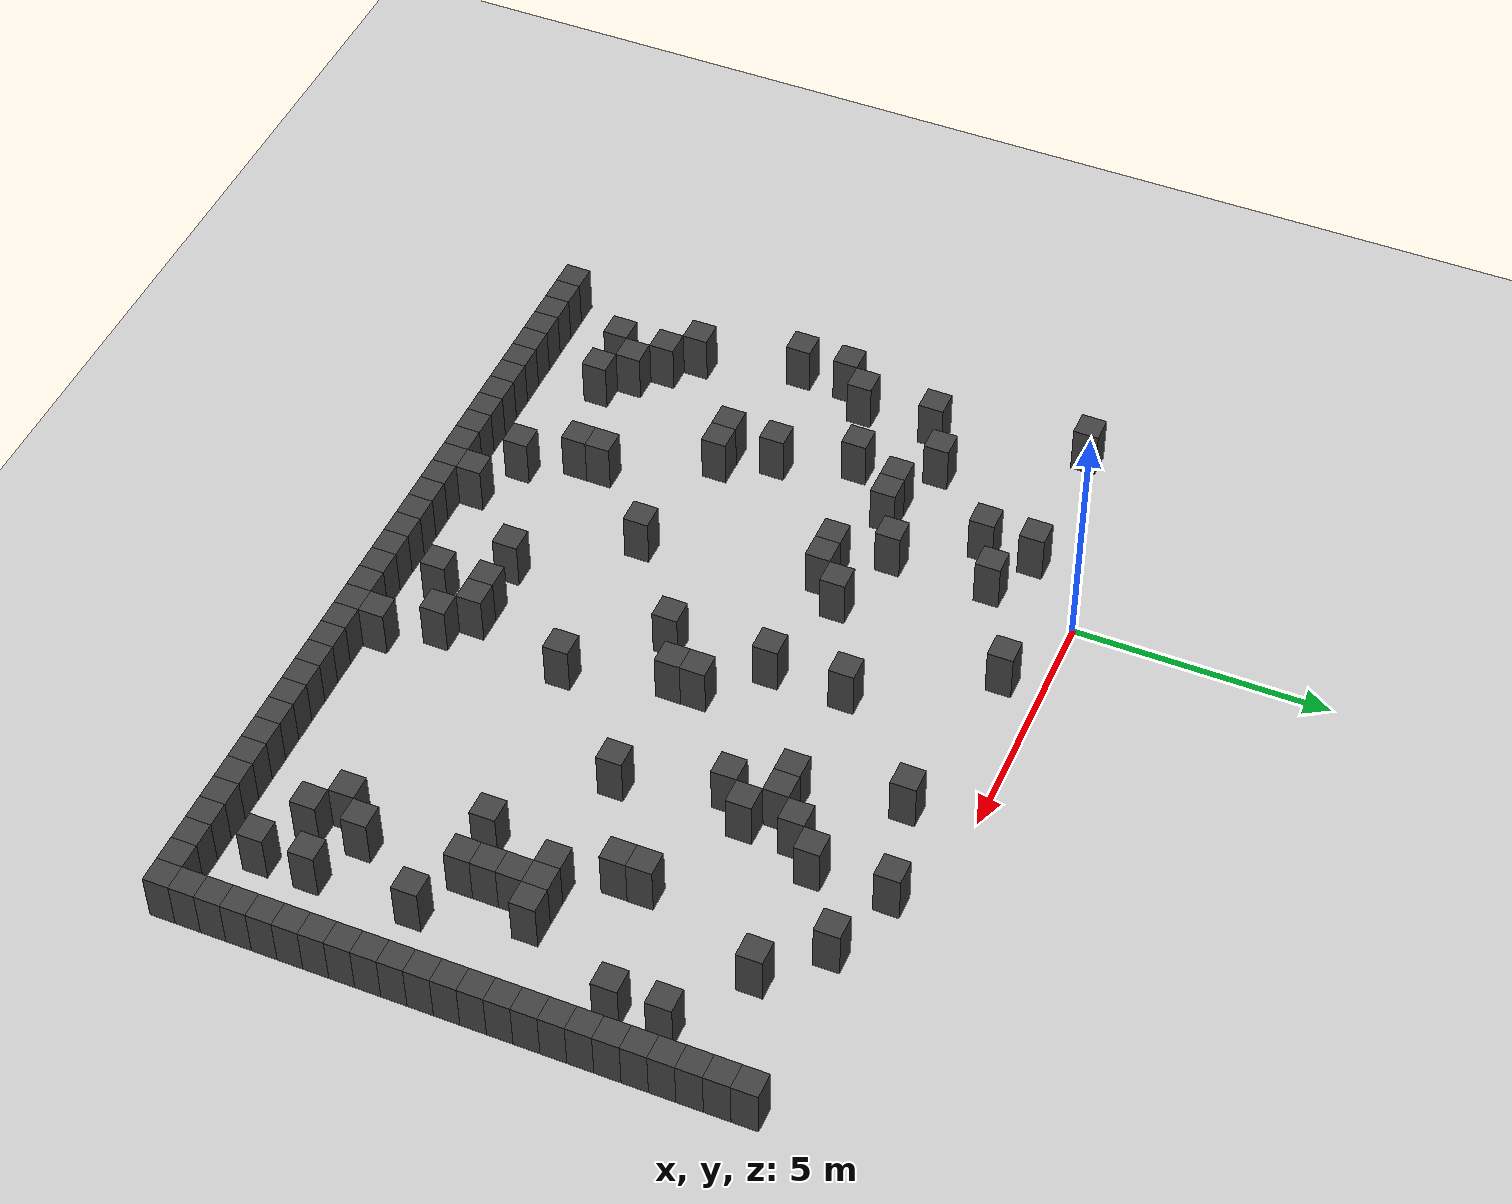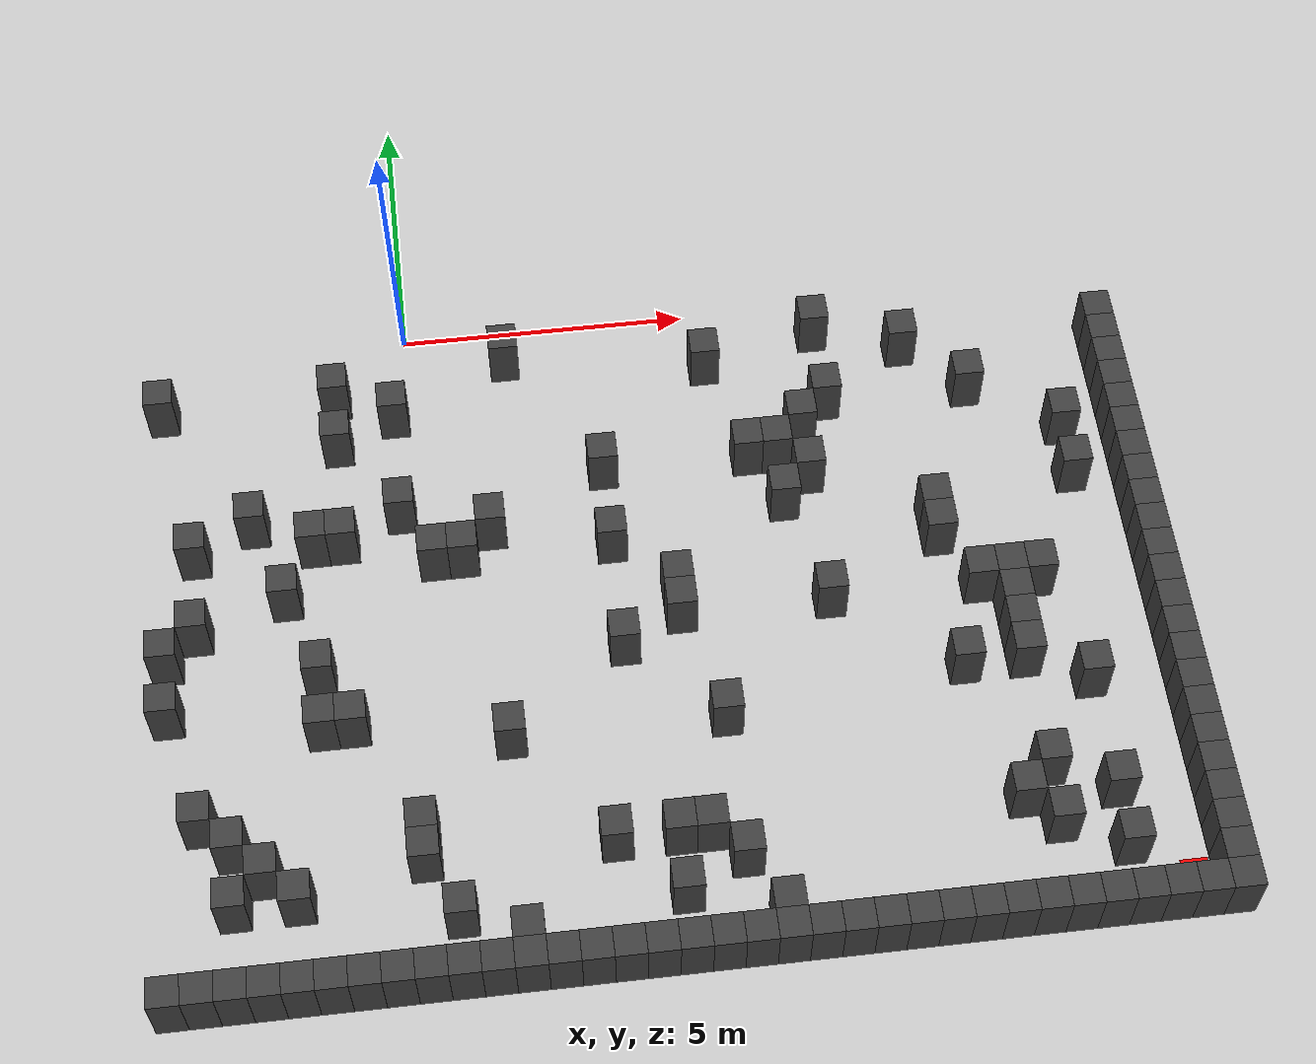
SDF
<sdf version="1.7">
 <world name="map_1352">
  <model name="ground_plane">
   <static>true</static>
   <link name="link">
    <collision name="collision">
     <geometry><plane><normal>0 0 1</normal><size>200 200</size></plane></geometry>
    </collision>
    <visual name="visual">
     <geometry><plane><normal>0 0 1</normal><size>200 200</size></plane></geometry>
     <material><ambient>0.8 0.8 0.8 1</ambient><diffuse>0.8 0.8 0.8 1</diffuse></material>
    </visual>
   </link>
  </model>
  <model name="maze_environment">
   <static>true</static>
   <link name="wall_196">
    <pose>1.750 -0.750 0.500 0 0 0</pose>
    <collision name="col"><geometry><box><size>0.5 0.5 1.0</size></box></geometry></collision>
    <visual name="vis">
     <geometry><box><size>0.5 0.5 1.0</size></box></geometry>
     <material><ambient>0.15 0.15 0.15 1</ambient><diffuse>0.25 0.25 0.25 1</diffuse></material>
    </visual>
   </link>
   <link name="wall_197">
    <pose>7.250 -0.750 0.500 0 0 0</pose>
    <collision name="col"><geometry><box><size>0.5 0.5 1.0</size></box></geometry></collision>
    <visual name="vis">
     <geometry><box><size>0.5 0.5 1.0</size></box></geometry>
     <material><ambient>0.15 0.15 0.15 1</ambient><diffuse>0.25 0.25 0.25 1</diffuse></material>
    </visual>
   </link>
   <link name="wall_202">
    <pose>-4.250 -1.250 0.500 0 0 0</pose>
    <collision name="col"><geometry><box><size>0.5 0.5 1.0</size></box></geometry></collision>
    <visual name="vis">
     <geometry><box><size>0.5 0.5 1.0</size></box></geometry>
     <material><ambient>0.15 0.15 0.15 1</ambient><diffuse>0.25 0.25 0.25 1</diffuse></material>
    </visual>
   </link>
   <link name="wall_203">
    <pose>-1.250 -1.250 0.500 0 0 0</pose>
    <collision name="col"><geometry><box><size>0.5 0.5 1.0</size></box></geometry></collision>
    <visual name="vis">
     <geometry><box><size>0.5 0.5 1.0</size></box></geometry>
     <material><ambient>0.15 0.15 0.15 1</ambient><diffuse>0.25 0.25 0.25 1</diffuse></material>
    </visual>
   </link>
   <link name="wall_204">
    <pose>5.250 -1.250 0.500 0 0 0</pose>
    <collision name="col"><geometry><box><size>0.5 0.5 1.0</size></box></geometry></collision>
    <visual name="vis">
     <geometry><box><size>0.5 0.5 1.0</size></box></geometry>
     <material><ambient>0.15 0.15 0.15 1</ambient><diffuse>0.25 0.25 0.25 1</diffuse></material>
    </visual>
   </link>
   <link name="wall_205">
    <pose>8.750 -1.250 0.500 0 0 0</pose>
    <collision name="col"><geometry><box><size>0.5 0.5 1.0</size></box></geometry></collision>
    <visual name="vis">
     <geometry><box><size>0.5 0.5 1.0</size></box></geometry>
     <material><ambient>0.15 0.15 0.15 1</ambient><diffuse>0.25 0.25 0.25 1</diffuse></material>
    </visual>
   </link>
   <link name="wall_206">
    <pose>12.250 -1.250 0.500 0 0 0</pose>
    <collision name="col"><geometry><box><size>0.5 0.5 1.0</size></box></geometry></collision>
    <visual name="vis">
     <geometry><box><size>0.5 0.5 1.0</size></box></geometry>
     <material><ambient>0.15 0.15 0.15 1</ambient><diffuse>0.25 0.25 0.25 1</diffuse></material>
    </visual>
   </link>
   <link name="wall_208">
    <pose>-0.250 -1.750 0.500 0 0 0</pose>
    <collision name="col"><geometry><box><size>0.5 0.5 1.0</size></box></geometry></collision>
    <visual name="vis">
     <geometry><box><size>0.5 0.5 1.0</size></box></geometry>
     <material><ambient>0.15 0.15 0.15 1</ambient><diffuse>0.25 0.25 0.25 1</diffuse></material>
    </visual>
   </link>
   <link name="wall_209">
    <pose>12.250 -1.750 0.500 0 0 0</pose>
    <collision name="col"><geometry><box><size>0.5 0.5 1.0</size></box></geometry></collision>
    <visual name="vis">
     <geometry><box><size>0.5 0.5 1.0</size></box></geometry>
     <material><ambient>0.15 0.15 0.15 1</ambient><diffuse>0.25 0.25 0.25 1</diffuse></material>
    </visual>
   </link>
   <link name="wall_212">
    <pose>-1.250 -2.250 0.500 0 0 0</pose>
    <collision name="col"><geometry><box><size>0.5 0.5 1.0</size></box></geometry></collision>
    <visual name="vis">
     <geometry><box><size>0.5 0.5 1.0</size></box></geometry>
     <material><ambient>0.15 0.15 0.15 1</ambient><diffuse>0.25 0.25 0.25 1</diffuse></material>
    </visual>
   </link>
   <link name="wall_213">
    <pose>7.250 -2.250 0.500 0 0 0</pose>
    <collision name="col"><geometry><box><size>0.5 0.5 1.0</size></box></geometry></collision>
    <visual name="vis">
     <geometry><box><size>0.5 0.5 1.0</size></box></geometry>
     <material><ambient>0.15 0.15 0.15 1</ambient><diffuse>0.25 0.25 0.25 1</diffuse></material>
    </visual>
   </link>
   <link name="wall_214">
    <pose>9.750 -2.250 0.500 0 0 0</pose>
    <collision name="col"><geometry><box><size>0.5 0.5 1.0</size></box></geometry></collision>
    <visual name="vis">
     <geometry><box><size>0.5 0.5 1.0</size></box></geometry>
     <material><ambient>0.15 0.15 0.15 1</ambient><diffuse>0.25 0.25 0.25 1</diffuse></material>
    </visual>
   </link>
   <link name="wall_215">
    <pose>12.250 -2.250 0.500 0 0 0</pose>
    <collision name="col"><geometry><box><size>0.5 0.5 1.0</size></box></geometry></collision>
    <visual name="vis">
     <geometry><box><size>0.5 0.5 1.0</size></box></geometry>
     <material><ambient>0.15 0.15 0.15 1</ambient><diffuse>0.25 0.25 0.25 1</diffuse></material>
    </visual>
   </link>
   <link name="wall_217">
    <pose>6.750 -2.750 0.500 0 0 0</pose>
    <collision name="col"><geometry><box><size>0.5 0.5 1.0</size></box></geometry></collision>
    <visual name="vis">
     <geometry><box><size>0.5 0.5 1.0</size></box></geometry>
     <material><ambient>0.15 0.15 0.15 1</ambient><diffuse>0.25 0.25 0.25 1</diffuse></material>
    </visual>
   </link>
   <link name="wall_218">
    <pose>12.250 -2.750 0.500 0 0 0</pose>
    <collision name="col"><geometry><box><size>0.5 0.5 1.0</size></box></geometry></collision>
    <visual name="vis">
     <geometry><box><size>0.5 0.5 1.0</size></box></geometry>
     <material><ambient>0.15 0.15 0.15 1</ambient><diffuse>0.25 0.25 0.25 1</diffuse></material>
    </visual>
   </link>
   <link name="wall_220">
    <pose>3.250 -3.250 0.500 0 0 0</pose>
    <collision name="col"><geometry><box><size>0.5 0.5 1.0</size></box></geometry></collision>
    <visual name="vis">
     <geometry><box><size>0.5 0.5 1.0</size></box></geometry>
     <material><ambient>0.15 0.15 0.15 1</ambient><diffuse>0.25 0.25 0.25 1</diffuse></material>
    </visual>
   </link>
   <link name="wall_221">
    <pose>5.750 -3.250 0.500 0 0 0</pose>
    <collision name="col"><geometry><box><size>0.5 0.5 1.0</size></box></geometry></collision>
    <visual name="vis">
     <geometry><box><size>0.5 0.5 1.0</size></box></geometry>
     <material><ambient>0.15 0.15 0.15 1</ambient><diffuse>0.25 0.25 0.25 1</diffuse></material>
    </visual>
   </link>
   <link name="wall_222">
    <pose>6.250 -3.250 0.500 0 0 0</pose>
    <collision name="col"><geometry><box><size>0.5 0.5 1.0</size></box></geometry></collision>
    <visual name="vis">
     <geometry><box><size>0.5 0.5 1.0</size></box></geometry>
     <material><ambient>0.15 0.15 0.15 1</ambient><diffuse>0.25 0.25 0.25 1</diffuse></material>
    </visual>
   </link>
   <link name="wall_223">
    <pose>11.250 -3.250 0.500 0 0 0</pose>
    <collision name="col"><geometry><box><size>0.5 0.5 1.0</size></box></geometry></collision>
    <visual name="vis">
     <geometry><box><size>0.5 0.5 1.0</size></box></geometry>
     <material><ambient>0.15 0.15 0.15 1</ambient><diffuse>0.25 0.25 0.25 1</diffuse></material>
    </visual>
   </link>
   <link name="wall_224">
    <pose>12.250 -3.250 0.500 0 0 0</pose>
    <collision name="col"><geometry><box><size>0.5 0.5 1.0</size></box></geometry></collision>
    <visual name="vis">
     <geometry><box><size>0.5 0.5 1.0</size></box></geometry>
     <material><ambient>0.15 0.15 0.15 1</ambient><diffuse>0.25 0.25 0.25 1</diffuse></material>
    </visual>
   </link>
   <link name="wall_229">
    <pose>-2.750 -3.750 0.500 0 0 0</pose>
    <collision name="col"><geometry><box><size>0.5 0.5 1.0</size></box></geometry></collision>
    <visual name="vis">
     <geometry><box><size>0.5 0.5 1.0</size></box></geometry>
     <material><ambient>0.15 0.15 0.15 1</ambient><diffuse>0.25 0.25 0.25 1</diffuse></material>
    </visual>
   </link>
   <link name="wall_230">
    <pose>-0.250 -3.750 0.500 0 0 0</pose>
    <collision name="col"><geometry><box><size>0.5 0.5 1.0</size></box></geometry></collision>
    <visual name="vis">
     <geometry><box><size>0.5 0.5 1.0</size></box></geometry>
     <material><ambient>0.15 0.15 0.15 1</ambient><diffuse>0.25 0.25 0.25 1</diffuse></material>
    </visual>
   </link>
   <link name="wall_231">
    <pose>6.750 -3.750 0.500 0 0 0</pose>
    <collision name="col"><geometry><box><size>0.5 0.5 1.0</size></box></geometry></collision>
    <visual name="vis">
     <geometry><box><size>0.5 0.5 1.0</size></box></geometry>
     <material><ambient>0.15 0.15 0.15 1</ambient><diffuse>0.25 0.25 0.25 1</diffuse></material>
    </visual>
   </link>
   <link name="wall_232">
    <pose>12.250 -3.750 0.500 0 0 0</pose>
    <collision name="col"><geometry><box><size>0.5 0.5 1.0</size></box></geometry></collision>
    <visual name="vis">
     <geometry><box><size>0.5 0.5 1.0</size></box></geometry>
     <material><ambient>0.15 0.15 0.15 1</ambient><diffuse>0.25 0.25 0.25 1</diffuse></material>
    </visual>
   </link>
   <link name="wall_235">
    <pose>-3.750 -4.250 0.500 0 0 0</pose>
    <collision name="col"><geometry><box><size>0.5 0.5 1.0</size></box></geometry></collision>
    <visual name="vis">
     <geometry><box><size>0.5 0.5 1.0</size></box></geometry>
     <material><ambient>0.15 0.15 0.15 1</ambient><diffuse>0.25 0.25 0.25 1</diffuse></material>
    </visual>
   </link>
   <link name="wall_236">
    <pose>-1.750 -4.250 0.500 0 0 0</pose>
    <collision name="col"><geometry><box><size>0.5 0.5 1.0</size></box></geometry></collision>
    <visual name="vis">
     <geometry><box><size>0.5 0.5 1.0</size></box></geometry>
     <material><ambient>0.15 0.15 0.15 1</ambient><diffuse>0.25 0.25 0.25 1</diffuse></material>
    </visual>
   </link>
   <link name="wall_237">
    <pose>-1.250 -4.250 0.500 0 0 0</pose>
    <collision name="col"><geometry><box><size>0.5 0.5 1.0</size></box></geometry></collision>
    <visual name="vis">
     <geometry><box><size>0.5 0.5 1.0</size></box></geometry>
     <material><ambient>0.15 0.15 0.15 1</ambient><diffuse>0.25 0.25 0.25 1</diffuse></material>
    </visual>
   </link>
   <link name="wall_238">
    <pose>1.250 -4.250 0.500 0 0 0</pose>
    <collision name="col"><geometry><box><size>0.5 0.5 1.0</size></box></geometry></collision>
    <visual name="vis">
     <geometry><box><size>0.5 0.5 1.0</size></box></geometry>
     <material><ambient>0.15 0.15 0.15 1</ambient><diffuse>0.25 0.25 0.25 1</diffuse></material>
    </visual>
   </link>
   <link name="wall_239">
    <pose>6.250 -4.250 0.500 0 0 0</pose>
    <collision name="col"><geometry><box><size>0.5 0.5 1.0</size></box></geometry></collision>
    <visual name="vis">
     <geometry><box><size>0.5 0.5 1.0</size></box></geometry>
     <material><ambient>0.15 0.15 0.15 1</ambient><diffuse>0.25 0.25 0.25 1</diffuse></material>
    </visual>
   </link>
   <link name="wall_240">
    <pose>11.250 -4.250 0.500 0 0 0</pose>
    <collision name="col"><geometry><box><size>0.5 0.5 1.0</size></box></geometry></collision>
    <visual name="vis">
     <geometry><box><size>0.5 0.5 1.0</size></box></geometry>
     <material><ambient>0.15 0.15 0.15 1</ambient><diffuse>0.25 0.25 0.25 1</diffuse></material>
    </visual>
   </link>
   <link name="wall_241">
    <pose>12.250 -4.250 0.500 0 0 0</pose>
    <collision name="col"><geometry><box><size>0.5 0.5 1.0</size></box></geometry></collision>
    <visual name="vis">
     <geometry><box><size>0.5 0.5 1.0</size></box></geometry>
     <material><ambient>0.15 0.15 0.15 1</ambient><diffuse>0.25 0.25 0.25 1</diffuse></material>
    </visual>
   </link>
   <link name="wall_244">
    <pose>0.250 -4.750 0.500 0 0 0</pose>
    <collision name="col"><geometry><box><size>0.5 0.5 1.0</size></box></geometry></collision>
    <visual name="vis">
     <geometry><box><size>0.5 0.5 1.0</size></box></geometry>
     <material><ambient>0.15 0.15 0.15 1</ambient><diffuse>0.25 0.25 0.25 1</diffuse></material>
    </visual>
   </link>
   <link name="wall_245">
    <pose>0.750 -4.750 0.500 0 0 0</pose>
    <collision name="col"><geometry><box><size>0.5 0.5 1.0</size></box></geometry></collision>
    <visual name="vis">
     <geometry><box><size>0.5 0.5 1.0</size></box></geometry>
     <material><ambient>0.15 0.15 0.15 1</ambient><diffuse>0.25 0.25 0.25 1</diffuse></material>
    </visual>
   </link>
   <link name="wall_246">
    <pose>3.250 -4.750 0.500 0 0 0</pose>
    <collision name="col"><geometry><box><size>0.5 0.5 1.0</size></box></geometry></collision>
    <visual name="vis">
     <geometry><box><size>0.5 0.5 1.0</size></box></geometry>
     <material><ambient>0.15 0.15 0.15 1</ambient><diffuse>0.25 0.25 0.25 1</diffuse></material>
    </visual>
   </link>
   <link name="wall_247">
    <pose>8.750 -4.750 0.500 0 0 0</pose>
    <collision name="col"><geometry><box><size>0.5 0.5 1.0</size></box></geometry></collision>
    <visual name="vis">
     <geometry><box><size>0.5 0.5 1.0</size></box></geometry>
     <material><ambient>0.15 0.15 0.15 1</ambient><diffuse>0.25 0.25 0.25 1</diffuse></material>
    </visual>
   </link>
   <link name="wall_248">
    <pose>12.250 -4.750 0.500 0 0 0</pose>
    <collision name="col"><geometry><box><size>0.5 0.5 1.0</size></box></geometry></collision>
    <visual name="vis">
     <geometry><box><size>0.5 0.5 1.0</size></box></geometry>
     <material><ambient>0.15 0.15 0.15 1</ambient><diffuse>0.25 0.25 0.25 1</diffuse></material>
    </visual>
   </link>
   <link name="wall_251">
    <pose>-2.250 -5.250 0.500 0 0 0</pose>
    <collision name="col"><geometry><box><size>0.5 0.5 1.0</size></box></geometry></collision>
    <visual name="vis">
     <geometry><box><size>0.5 0.5 1.0</size></box></geometry>
     <material><ambient>0.15 0.15 0.15 1</ambient><diffuse>0.25 0.25 0.25 1</diffuse></material>
    </visual>
   </link>
   <link name="wall_252">
    <pose>8.750 -5.250 0.500 0 0 0</pose>
    <collision name="col"><geometry><box><size>0.5 0.5 1.0</size></box></geometry></collision>
    <visual name="vis">
     <geometry><box><size>0.5 0.5 1.0</size></box></geometry>
     <material><ambient>0.15 0.15 0.15 1</ambient><diffuse>0.25 0.25 0.25 1</diffuse></material>
    </visual>
   </link>
   <link name="wall_253">
    <pose>12.250 -5.250 0.500 0 0 0</pose>
    <collision name="col"><geometry><box><size>0.5 0.5 1.0</size></box></geometry></collision>
    <visual name="vis">
     <geometry><box><size>0.5 0.5 1.0</size></box></geometry>
     <material><ambient>0.15 0.15 0.15 1</ambient><diffuse>0.25 0.25 0.25 1</diffuse></material>
    </visual>
   </link>
   <link name="wall_257">
    <pose>-3.750 -5.750 0.500 0 0 0</pose>
    <collision name="col"><geometry><box><size>0.5 0.5 1.0</size></box></geometry></collision>
    <visual name="vis">
     <geometry><box><size>0.5 0.5 1.0</size></box></geometry>
     <material><ambient>0.15 0.15 0.15 1</ambient><diffuse>0.25 0.25 0.25 1</diffuse></material>
    </visual>
   </link>
   <link name="wall_258">
    <pose>4.250 -5.750 0.500 0 0 0</pose>
    <collision name="col"><geometry><box><size>0.5 0.5 1.0</size></box></geometry></collision>
    <visual name="vis">
     <geometry><box><size>0.5 0.5 1.0</size></box></geometry>
     <material><ambient>0.15 0.15 0.15 1</ambient><diffuse>0.25 0.25 0.25 1</diffuse></material>
    </visual>
   </link>
   <link name="wall_259">
    <pose>12.250 -5.750 0.500 0 0 0</pose>
    <collision name="col"><geometry><box><size>0.5 0.5 1.0</size></box></geometry></collision>
    <visual name="vis">
     <geometry><box><size>0.5 0.5 1.0</size></box></geometry>
     <material><ambient>0.15 0.15 0.15 1</ambient><diffuse>0.25 0.25 0.25 1</diffuse></material>
    </visual>
   </link>
   <link name="wall_262">
    <pose>-4.250 -6.250 0.500 0 0 0</pose>
    <collision name="col"><geometry><box><size>0.5 0.5 1.0</size></box></geometry></collision>
    <visual name="vis">
     <geometry><box><size>0.5 0.5 1.0</size></box></geometry>
     <material><ambient>0.15 0.15 0.15 1</ambient><diffuse>0.25 0.25 0.25 1</diffuse></material>
    </visual>
   </link>
   <link name="wall_263">
    <pose>4.250 -6.250 0.500 0 0 0</pose>
    <collision name="col"><geometry><box><size>0.5 0.5 1.0</size></box></geometry></collision>
    <visual name="vis">
     <geometry><box><size>0.5 0.5 1.0</size></box></geometry>
     <material><ambient>0.15 0.15 0.15 1</ambient><diffuse>0.25 0.25 0.25 1</diffuse></material>
    </visual>
   </link>
   <link name="wall_264">
    <pose>6.750 -6.250 0.500 0 0 0</pose>
    <collision name="col"><geometry><box><size>0.5 0.5 1.0</size></box></geometry></collision>
    <visual name="vis">
     <geometry><box><size>0.5 0.5 1.0</size></box></geometry>
     <material><ambient>0.15 0.15 0.15 1</ambient><diffuse>0.25 0.25 0.25 1</diffuse></material>
    </visual>
   </link>
   <link name="wall_265">
    <pose>9.250 -6.250 0.500 0 0 0</pose>
    <collision name="col"><geometry><box><size>0.5 0.5 1.0</size></box></geometry></collision>
    <visual name="vis">
     <geometry><box><size>0.5 0.5 1.0</size></box></geometry>
     <material><ambient>0.15 0.15 0.15 1</ambient><diffuse>0.25 0.25 0.25 1</diffuse></material>
    </visual>
   </link>
   <link name="wall_266">
    <pose>9.750 -6.250 0.500 0 0 0</pose>
    <collision name="col"><geometry><box><size>0.5 0.5 1.0</size></box></geometry></collision>
    <visual name="vis">
     <geometry><box><size>0.5 0.5 1.0</size></box></geometry>
     <material><ambient>0.15 0.15 0.15 1</ambient><diffuse>0.25 0.25 0.25 1</diffuse></material>
    </visual>
   </link>
   <link name="wall_267">
    <pose>10.250 -6.250 0.500 0 0 0</pose>
    <collision name="col"><geometry><box><size>0.5 0.5 1.0</size></box></geometry></collision>
    <visual name="vis">
     <geometry><box><size>0.5 0.5 1.0</size></box></geometry>
     <material><ambient>0.15 0.15 0.15 1</ambient><diffuse>0.25 0.25 0.25 1</diffuse></material>
    </visual>
   </link>
   <link name="wall_268">
    <pose>12.250 -6.250 0.500 0 0 0</pose>
    <collision name="col"><geometry><box><size>0.5 0.5 1.0</size></box></geometry></collision>
    <visual name="vis">
     <geometry><box><size>0.5 0.5 1.0</size></box></geometry>
     <material><ambient>0.15 0.15 0.15 1</ambient><diffuse>0.25 0.25 0.25 1</diffuse></material>
    </visual>
   </link>
   <link name="wall_271">
    <pose>-1.750 -6.750 0.500 0 0 0</pose>
    <collision name="col"><geometry><box><size>0.5 0.5 1.0</size></box></geometry></collision>
    <visual name="vis">
     <geometry><box><size>0.5 0.5 1.0</size></box></geometry>
     <material><ambient>0.15 0.15 0.15 1</ambient><diffuse>0.25 0.25 0.25 1</diffuse></material>
    </visual>
   </link>
   <link name="wall_272">
    <pose>3.250 -6.750 0.500 0 0 0</pose>
    <collision name="col"><geometry><box><size>0.5 0.5 1.0</size></box></geometry></collision>
    <visual name="vis">
     <geometry><box><size>0.5 0.5 1.0</size></box></geometry>
     <material><ambient>0.15 0.15 0.15 1</ambient><diffuse>0.25 0.25 0.25 1</diffuse></material>
    </visual>
   </link>
   <link name="wall_273">
    <pose>9.750 -6.750 0.500 0 0 0</pose>
    <collision name="col"><geometry><box><size>0.5 0.5 1.0</size></box></geometry></collision>
    <visual name="vis">
     <geometry><box><size>0.5 0.5 1.0</size></box></geometry>
     <material><ambient>0.15 0.15 0.15 1</ambient><diffuse>0.25 0.25 0.25 1</diffuse></material>
    </visual>
   </link>
   <link name="wall_274">
    <pose>12.250 -6.750 0.500 0 0 0</pose>
    <collision name="col"><geometry><box><size>0.5 0.5 1.0</size></box></geometry></collision>
    <visual name="vis">
     <geometry><box><size>0.5 0.5 1.0</size></box></geometry>
     <material><ambient>0.15 0.15 0.15 1</ambient><diffuse>0.25 0.25 0.25 1</diffuse></material>
    </visual>
   </link>
   <link name="wall_278">
    <pose>-4.250 -7.250 0.500 0 0 0</pose>
    <collision name="col"><geometry><box><size>0.5 0.5 1.0</size></box></geometry></collision>
    <visual name="vis">
     <geometry><box><size>0.5 0.5 1.0</size></box></geometry>
     <material><ambient>0.15 0.15 0.15 1</ambient><diffuse>0.25 0.25 0.25 1</diffuse></material>
    </visual>
   </link>
   <link name="wall_279">
    <pose>9.750 -7.250 0.500 0 0 0</pose>
    <collision name="col"><geometry><box><size>0.5 0.5 1.0</size></box></geometry></collision>
    <visual name="vis">
     <geometry><box><size>0.5 0.5 1.0</size></box></geometry>
     <material><ambient>0.15 0.15 0.15 1</ambient><diffuse>0.25 0.25 0.25 1</diffuse></material>
    </visual>
   </link>
   <link name="wall_280">
    <pose>12.250 -7.250 0.500 0 0 0</pose>
    <collision name="col"><geometry><box><size>0.5 0.5 1.0</size></box></geometry></collision>
    <visual name="vis">
     <geometry><box><size>0.5 0.5 1.0</size></box></geometry>
     <material><ambient>0.15 0.15 0.15 1</ambient><diffuse>0.25 0.25 0.25 1</diffuse></material>
    </visual>
   </link>
   <link name="wall_284">
    <pose>-1.750 -7.750 0.500 0 0 0</pose>
    <collision name="col"><geometry><box><size>0.5 0.5 1.0</size></box></geometry></collision>
    <visual name="vis">
     <geometry><box><size>0.5 0.5 1.0</size></box></geometry>
     <material><ambient>0.15 0.15 0.15 1</ambient><diffuse>0.25 0.25 0.25 1</diffuse></material>
    </visual>
   </link>
   <link name="wall_285">
    <pose>-1.250 -7.750 0.500 0 0 0</pose>
    <collision name="col"><geometry><box><size>0.5 0.5 1.0</size></box></geometry></collision>
    <visual name="vis">
     <geometry><box><size>0.5 0.5 1.0</size></box></geometry>
     <material><ambient>0.15 0.15 0.15 1</ambient><diffuse>0.25 0.25 0.25 1</diffuse></material>
    </visual>
   </link>
   <link name="wall_286">
    <pose>8.750 -7.750 0.500 0 0 0</pose>
    <collision name="col"><geometry><box><size>0.5 0.5 1.0</size></box></geometry></collision>
    <visual name="vis">
     <geometry><box><size>0.5 0.5 1.0</size></box></geometry>
     <material><ambient>0.15 0.15 0.15 1</ambient><diffuse>0.25 0.25 0.25 1</diffuse></material>
    </visual>
   </link>
   <link name="wall_287">
    <pose>9.750 -7.750 0.500 0 0 0</pose>
    <collision name="col"><geometry><box><size>0.5 0.5 1.0</size></box></geometry></collision>
    <visual name="vis">
     <geometry><box><size>0.5 0.5 1.0</size></box></geometry>
     <material><ambient>0.15 0.15 0.15 1</ambient><diffuse>0.25 0.25 0.25 1</diffuse></material>
    </visual>
   </link>
   <link name="wall_288">
    <pose>12.250 -7.750 0.500 0 0 0</pose>
    <collision name="col"><geometry><box><size>0.5 0.5 1.0</size></box></geometry></collision>
    <visual name="vis">
     <geometry><box><size>0.5 0.5 1.0</size></box></geometry>
     <material><ambient>0.15 0.15 0.15 1</ambient><diffuse>0.25 0.25 0.25 1</diffuse></material>
    </visual>
   </link>
   <link name="wall_290">
    <pose>1.250 -8.250 0.500 0 0 0</pose>
    <collision name="col"><geometry><box><size>0.5 0.5 1.0</size></box></geometry></collision>
    <visual name="vis">
     <geometry><box><size>0.5 0.5 1.0</size></box></geometry>
     <material><ambient>0.15 0.15 0.15 1</ambient><diffuse>0.25 0.25 0.25 1</diffuse></material>
    </visual>
   </link>
   <link name="wall_291">
    <pose>4.750 -8.250 0.500 0 0 0</pose>
    <collision name="col"><geometry><box><size>0.5 0.5 1.0</size></box></geometry></collision>
    <visual name="vis">
     <geometry><box><size>0.5 0.5 1.0</size></box></geometry>
     <material><ambient>0.15 0.15 0.15 1</ambient><diffuse>0.25 0.25 0.25 1</diffuse></material>
    </visual>
   </link>
   <link name="wall_292">
    <pose>10.750 -8.250 0.500 0 0 0</pose>
    <collision name="col"><geometry><box><size>0.5 0.5 1.0</size></box></geometry></collision>
    <visual name="vis">
     <geometry><box><size>0.5 0.5 1.0</size></box></geometry>
     <material><ambient>0.15 0.15 0.15 1</ambient><diffuse>0.25 0.25 0.25 1</diffuse></material>
    </visual>
   </link>
   <link name="wall_293">
    <pose>12.250 -8.250 0.500 0 0 0</pose>
    <collision name="col"><geometry><box><size>0.5 0.5 1.0</size></box></geometry></collision>
    <visual name="vis">
     <geometry><box><size>0.5 0.5 1.0</size></box></geometry>
     <material><ambient>0.15 0.15 0.15 1</ambient><diffuse>0.25 0.25 0.25 1</diffuse></material>
    </visual>
   </link>
   <link name="wall_297">
    <pose>12.250 -8.750 0.500 0 0 0</pose>
    <collision name="col"><geometry><box><size>0.5 0.5 1.0</size></box></geometry></collision>
    <visual name="vis">
     <geometry><box><size>0.5 0.5 1.0</size></box></geometry>
     <material><ambient>0.15 0.15 0.15 1</ambient><diffuse>0.25 0.25 0.25 1</diffuse></material>
    </visual>
   </link>
   <link name="wall_299">
    <pose>-3.750 -9.250 0.500 0 0 0</pose>
    <collision name="col"><geometry><box><size>0.5 0.5 1.0</size></box></geometry></collision>
    <visual name="vis">
     <geometry><box><size>0.5 0.5 1.0</size></box></geometry>
     <material><ambient>0.15 0.15 0.15 1</ambient><diffuse>0.25 0.25 0.25 1</diffuse></material>
    </visual>
   </link>
   <link name="wall_300">
    <pose>12.250 -9.250 0.500 0 0 0</pose>
    <collision name="col"><geometry><box><size>0.5 0.5 1.0</size></box></geometry></collision>
    <visual name="vis">
     <geometry><box><size>0.5 0.5 1.0</size></box></geometry>
     <material><ambient>0.15 0.15 0.15 1</ambient><diffuse>0.25 0.25 0.25 1</diffuse></material>
    </visual>
   </link>
   <link name="wall_302">
    <pose>-3.250 -9.750 0.500 0 0 0</pose>
    <collision name="col"><geometry><box><size>0.5 0.5 1.0</size></box></geometry></collision>
    <visual name="vis">
     <geometry><box><size>0.5 0.5 1.0</size></box></geometry>
     <material><ambient>0.15 0.15 0.15 1</ambient><diffuse>0.25 0.25 0.25 1</diffuse></material>
    </visual>
   </link>
   <link name="wall_303">
    <pose>-0.250 -9.750 0.500 0 0 0</pose>
    <collision name="col"><geometry><box><size>0.5 0.5 1.0</size></box></geometry></collision>
    <visual name="vis">
     <geometry><box><size>0.5 0.5 1.0</size></box></geometry>
     <material><ambient>0.15 0.15 0.15 1</ambient><diffuse>0.25 0.25 0.25 1</diffuse></material>
    </visual>
   </link>
   <link name="wall_304">
    <pose>9.750 -9.750 0.500 0 0 0</pose>
    <collision name="col"><geometry><box><size>0.5 0.5 1.0</size></box></geometry></collision>
    <visual name="vis">
     <geometry><box><size>0.5 0.5 1.0</size></box></geometry>
     <material><ambient>0.15 0.15 0.15 1</ambient><diffuse>0.25 0.25 0.25 1</diffuse></material>
    </visual>
   </link>
   <link name="wall_305">
    <pose>12.250 -9.750 0.500 0 0 0</pose>
    <collision name="col"><geometry><box><size>0.5 0.5 1.0</size></box></geometry></collision>
    <visual name="vis">
     <geometry><box><size>0.5 0.5 1.0</size></box></geometry>
     <material><ambient>0.15 0.15 0.15 1</ambient><diffuse>0.25 0.25 0.25 1</diffuse></material>
    </visual>
   </link>
   <link name="wall_308">
    <pose>-2.750 -10.250 0.500 0 0 0</pose>
    <collision name="col"><geometry><box><size>0.5 0.5 1.0</size></box></geometry></collision>
    <visual name="vis">
     <geometry><box><size>0.5 0.5 1.0</size></box></geometry>
     <material><ambient>0.15 0.15 0.15 1</ambient><diffuse>0.25 0.25 0.25 1</diffuse></material>
    </visual>
   </link>
   <link name="wall_309">
    <pose>-0.250 -10.250 0.500 0 0 0</pose>
    <collision name="col"><geometry><box><size>0.5 0.5 1.0</size></box></geometry></collision>
    <visual name="vis">
     <geometry><box><size>0.5 0.5 1.0</size></box></geometry>
     <material><ambient>0.15 0.15 0.15 1</ambient><diffuse>0.25 0.25 0.25 1</diffuse></material>
    </visual>
   </link>
   <link name="wall_310">
    <pose>2.750 -10.250 0.500 0 0 0</pose>
    <collision name="col"><geometry><box><size>0.5 0.5 1.0</size></box></geometry></collision>
    <visual name="vis">
     <geometry><box><size>0.5 0.5 1.0</size></box></geometry>
     <material><ambient>0.15 0.15 0.15 1</ambient><diffuse>0.25 0.25 0.25 1</diffuse></material>
    </visual>
   </link>
   <link name="wall_311">
    <pose>3.750 -10.250 0.500 0 0 0</pose>
    <collision name="col"><geometry><box><size>0.5 0.5 1.0</size></box></geometry></collision>
    <visual name="vis">
     <geometry><box><size>0.5 0.5 1.0</size></box></geometry>
     <material><ambient>0.15 0.15 0.15 1</ambient><diffuse>0.25 0.25 0.25 1</diffuse></material>
    </visual>
   </link>
   <link name="wall_312">
    <pose>4.250 -10.250 0.500 0 0 0</pose>
    <collision name="col"><geometry><box><size>0.5 0.5 1.0</size></box></geometry></collision>
    <visual name="vis">
     <geometry><box><size>0.5 0.5 1.0</size></box></geometry>
     <material><ambient>0.15 0.15 0.15 1</ambient><diffuse>0.25 0.25 0.25 1</diffuse></material>
    </visual>
   </link>
   <link name="wall_313">
    <pose>9.250 -10.250 0.500 0 0 0</pose>
    <collision name="col"><geometry><box><size>0.5 0.5 1.0</size></box></geometry></collision>
    <visual name="vis">
     <geometry><box><size>0.5 0.5 1.0</size></box></geometry>
     <material><ambient>0.15 0.15 0.15 1</ambient><diffuse>0.25 0.25 0.25 1</diffuse></material>
    </visual>
   </link>
   <link name="wall_314">
    <pose>10.750 -10.250 0.500 0 0 0</pose>
    <collision name="col"><geometry><box><size>0.5 0.5 1.0</size></box></geometry></collision>
    <visual name="vis">
     <geometry><box><size>0.5 0.5 1.0</size></box></geometry>
     <material><ambient>0.15 0.15 0.15 1</ambient><diffuse>0.25 0.25 0.25 1</diffuse></material>
    </visual>
   </link>
   <link name="wall_315">
    <pose>12.250 -10.250 0.500 0 0 0</pose>
    <collision name="col"><geometry><box><size>0.5 0.5 1.0</size></box></geometry></collision>
    <visual name="vis">
     <geometry><box><size>0.5 0.5 1.0</size></box></geometry>
     <material><ambient>0.15 0.15 0.15 1</ambient><diffuse>0.25 0.25 0.25 1</diffuse></material>
    </visual>
   </link>
   <link name="wall_317">
    <pose>-3.250 -10.750 0.500 0 0 0</pose>
    <collision name="col"><geometry><box><size>0.5 0.5 1.0</size></box></geometry></collision>
    <visual name="vis">
     <geometry><box><size>0.5 0.5 1.0</size></box></geometry>
     <material><ambient>0.15 0.15 0.15 1</ambient><diffuse>0.25 0.25 0.25 1</diffuse></material>
    </visual>
   </link>
   <link name="wall_318">
    <pose>-2.250 -10.750 0.500 0 0 0</pose>
    <collision name="col"><geometry><box><size>0.5 0.5 1.0</size></box></geometry></collision>
    <visual name="vis">
     <geometry><box><size>0.5 0.5 1.0</size></box></geometry>
     <material><ambient>0.15 0.15 0.15 1</ambient><diffuse>0.25 0.25 0.25 1</diffuse></material>
    </visual>
   </link>
   <link name="wall_319">
    <pose>4.750 -10.750 0.500 0 0 0</pose>
    <collision name="col"><geometry><box><size>0.5 0.5 1.0</size></box></geometry></collision>
    <visual name="vis">
     <geometry><box><size>0.5 0.5 1.0</size></box></geometry>
     <material><ambient>0.15 0.15 0.15 1</ambient><diffuse>0.25 0.25 0.25 1</diffuse></material>
    </visual>
   </link>
   <link name="wall_320">
    <pose>9.750 -10.750 0.500 0 0 0</pose>
    <collision name="col"><geometry><box><size>0.5 0.5 1.0</size></box></geometry></collision>
    <visual name="vis">
     <geometry><box><size>0.5 0.5 1.0</size></box></geometry>
     <material><ambient>0.15 0.15 0.15 1</ambient><diffuse>0.25 0.25 0.25 1</diffuse></material>
    </visual>
   </link>
   <link name="wall_321">
    <pose>12.250 -10.750 0.500 0 0 0</pose>
    <collision name="col"><geometry><box><size>0.5 0.5 1.0</size></box></geometry></collision>
    <visual name="vis">
     <geometry><box><size>0.5 0.5 1.0</size></box></geometry>
     <material><ambient>0.15 0.15 0.15 1</ambient><diffuse>0.25 0.25 0.25 1</diffuse></material>
    </visual>
   </link>
   <link name="wall_323">
    <pose>0.250 -11.250 0.500 0 0 0</pose>
    <collision name="col"><geometry><box><size>0.5 0.5 1.0</size></box></geometry></collision>
    <visual name="vis">
     <geometry><box><size>0.5 0.5 1.0</size></box></geometry>
     <material><ambient>0.15 0.15 0.15 1</ambient><diffuse>0.25 0.25 0.25 1</diffuse></material>
    </visual>
   </link>
   <link name="wall_324">
    <pose>3.750 -11.250 0.500 0 0 0</pose>
    <collision name="col"><geometry><box><size>0.5 0.5 1.0</size></box></geometry></collision>
    <visual name="vis">
     <geometry><box><size>0.5 0.5 1.0</size></box></geometry>
     <material><ambient>0.15 0.15 0.15 1</ambient><diffuse>0.25 0.25 0.25 1</diffuse></material>
    </visual>
   </link>
   <link name="wall_325">
    <pose>10.750 -11.250 0.500 0 0 0</pose>
    <collision name="col"><geometry><box><size>0.5 0.5 1.0</size></box></geometry></collision>
    <visual name="vis">
     <geometry><box><size>0.5 0.5 1.0</size></box></geometry>
     <material><ambient>0.15 0.15 0.15 1</ambient><diffuse>0.25 0.25 0.25 1</diffuse></material>
    </visual>
   </link>
   <link name="wall_326">
    <pose>12.250 -11.250 0.500 0 0 0</pose>
    <collision name="col"><geometry><box><size>0.5 0.5 1.0</size></box></geometry></collision>
    <visual name="vis">
     <geometry><box><size>0.5 0.5 1.0</size></box></geometry>
     <material><ambient>0.15 0.15 0.15 1</ambient><diffuse>0.25 0.25 0.25 1</diffuse></material>
    </visual>
   </link>
   <link name="wall_328">
    <pose>1.250 -11.750 0.500 0 0 0</pose>
    <collision name="col"><geometry><box><size>0.5 0.5 1.0</size></box></geometry></collision>
    <visual name="vis">
     <geometry><box><size>0.5 0.5 1.0</size></box></geometry>
     <material><ambient>0.15 0.15 0.15 1</ambient><diffuse>0.25 0.25 0.25 1</diffuse></material>
    </visual>
   </link>
   <link name="wall_329">
    <pose>5.250 -11.750 0.500 0 0 0</pose>
    <collision name="col"><geometry><box><size>0.5 0.5 1.0</size></box></geometry></collision>
    <visual name="vis">
     <geometry><box><size>0.5 0.5 1.0</size></box></geometry>
     <material><ambient>0.15 0.15 0.15 1</ambient><diffuse>0.25 0.25 0.25 1</diffuse></material>
    </visual>
   </link>
   <link name="wall_330">
    <pose>12.250 -11.750 0.500 0 0 0</pose>
    <collision name="col"><geometry><box><size>0.5 0.5 1.0</size></box></geometry></collision>
    <visual name="vis">
     <geometry><box><size>0.5 0.5 1.0</size></box></geometry>
     <material><ambient>0.15 0.15 0.15 1</ambient><diffuse>0.25 0.25 0.25 1</diffuse></material>
    </visual>
   </link>
   <link name="wall_347">
    <pose>-4.250 -12.250 0.500 0 0 0</pose>
    <collision name="col"><geometry><box><size>0.5 0.5 1.0</size></box></geometry></collision>
    <visual name="vis">
     <geometry><box><size>0.5 0.5 1.0</size></box></geometry>
     <material><ambient>0.15 0.15 0.15 1</ambient><diffuse>0.25 0.25 0.25 1</diffuse></material>
    </visual>
   </link>
   <link name="wall_348">
    <pose>-3.750 -12.250 0.500 0 0 0</pose>
    <collision name="col"><geometry><box><size>0.5 0.5 1.0</size></box></geometry></collision>
    <visual name="vis">
     <geometry><box><size>0.5 0.5 1.0</size></box></geometry>
     <material><ambient>0.15 0.15 0.15 1</ambient><diffuse>0.25 0.25 0.25 1</diffuse></material>
    </visual>
   </link>
   <link name="wall_349">
    <pose>-3.250 -12.250 0.500 0 0 0</pose>
    <collision name="col"><geometry><box><size>0.5 0.5 1.0</size></box></geometry></collision>
    <visual name="vis">
     <geometry><box><size>0.5 0.5 1.0</size></box></geometry>
     <material><ambient>0.15 0.15 0.15 1</ambient><diffuse>0.25 0.25 0.25 1</diffuse></material>
    </visual>
   </link>
   <link name="wall_350">
    <pose>-2.750 -12.250 0.500 0 0 0</pose>
    <collision name="col"><geometry><box><size>0.5 0.5 1.0</size></box></geometry></collision>
    <visual name="vis">
     <geometry><box><size>0.5 0.5 1.0</size></box></geometry>
     <material><ambient>0.15 0.15 0.15 1</ambient><diffuse>0.25 0.25 0.25 1</diffuse></material>
    </visual>
   </link>
   <link name="wall_351">
    <pose>-2.250 -12.250 0.500 0 0 0</pose>
    <collision name="col"><geometry><box><size>0.5 0.5 1.0</size></box></geometry></collision>
    <visual name="vis">
     <geometry><box><size>0.5 0.5 1.0</size></box></geometry>
     <material><ambient>0.15 0.15 0.15 1</ambient><diffuse>0.25 0.25 0.25 1</diffuse></material>
    </visual>
   </link>
   <link name="wall_352">
    <pose>-1.750 -12.250 0.500 0 0 0</pose>
    <collision name="col"><geometry><box><size>0.5 0.5 1.0</size></box></geometry></collision>
    <visual name="vis">
     <geometry><box><size>0.5 0.5 1.0</size></box></geometry>
     <material><ambient>0.15 0.15 0.15 1</ambient><diffuse>0.25 0.25 0.25 1</diffuse></material>
    </visual>
   </link>
   <link name="wall_353">
    <pose>-1.250 -12.250 0.500 0 0 0</pose>
    <collision name="col"><geometry><box><size>0.5 0.5 1.0</size></box></geometry></collision>
    <visual name="vis">
     <geometry><box><size>0.5 0.5 1.0</size></box></geometry>
     <material><ambient>0.15 0.15 0.15 1</ambient><diffuse>0.25 0.25 0.25 1</diffuse></material>
    </visual>
   </link>
   <link name="wall_354">
    <pose>-0.750 -12.250 0.500 0 0 0</pose>
    <collision name="col"><geometry><box><size>0.5 0.5 1.0</size></box></geometry></collision>
    <visual name="vis">
     <geometry><box><size>0.5 0.5 1.0</size></box></geometry>
     <material><ambient>0.15 0.15 0.15 1</ambient><diffuse>0.25 0.25 0.25 1</diffuse></material>
    </visual>
   </link>
   <link name="wall_355">
    <pose>-0.250 -12.250 0.500 0 0 0</pose>
    <collision name="col"><geometry><box><size>0.5 0.5 1.0</size></box></geometry></collision>
    <visual name="vis">
     <geometry><box><size>0.5 0.5 1.0</size></box></geometry>
     <material><ambient>0.15 0.15 0.15 1</ambient><diffuse>0.25 0.25 0.25 1</diffuse></material>
    </visual>
   </link>
   <link name="wall_356">
    <pose>0.250 -12.250 0.500 0 0 0</pose>
    <collision name="col"><geometry><box><size>0.5 0.5 1.0</size></box></geometry></collision>
    <visual name="vis">
     <geometry><box><size>0.5 0.5 1.0</size></box></geometry>
     <material><ambient>0.15 0.15 0.15 1</ambient><diffuse>0.25 0.25 0.25 1</diffuse></material>
    </visual>
   </link>
   <link name="wall_357">
    <pose>0.750 -12.250 0.500 0 0 0</pose>
    <collision name="col"><geometry><box><size>0.5 0.5 1.0</size></box></geometry></collision>
    <visual name="vis">
     <geometry><box><size>0.5 0.5 1.0</size></box></geometry>
     <material><ambient>0.15 0.15 0.15 1</ambient><diffuse>0.25 0.25 0.25 1</diffuse></material>
    </visual>
   </link>
   <link name="wall_358">
    <pose>1.250 -12.250 0.500 0 0 0</pose>
    <collision name="col"><geometry><box><size>0.5 0.5 1.0</size></box></geometry></collision>
    <visual name="vis">
     <geometry><box><size>0.5 0.5 1.0</size></box></geometry>
     <material><ambient>0.15 0.15 0.15 1</ambient><diffuse>0.25 0.25 0.25 1</diffuse></material>
    </visual>
   </link>
   <link name="wall_359">
    <pose>1.750 -12.250 0.500 0 0 0</pose>
    <collision name="col"><geometry><box><size>0.5 0.5 1.0</size></box></geometry></collision>
    <visual name="vis">
     <geometry><box><size>0.5 0.5 1.0</size></box></geometry>
     <material><ambient>0.15 0.15 0.15 1</ambient><diffuse>0.25 0.25 0.25 1</diffuse></material>
    </visual>
   </link>
   <link name="wall_360">
    <pose>2.250 -12.250 0.500 0 0 0</pose>
    <collision name="col"><geometry><box><size>0.5 0.5 1.0</size></box></geometry></collision>
    <visual name="vis">
     <geometry><box><size>0.5 0.5 1.0</size></box></geometry>
     <material><ambient>0.15 0.15 0.15 1</ambient><diffuse>0.25 0.25 0.25 1</diffuse></material>
    </visual>
   </link>
   <link name="wall_361">
    <pose>2.750 -12.250 0.500 0 0 0</pose>
    <collision name="col"><geometry><box><size>0.5 0.5 1.0</size></box></geometry></collision>
    <visual name="vis">
     <geometry><box><size>0.5 0.5 1.0</size></box></geometry>
     <material><ambient>0.15 0.15 0.15 1</ambient><diffuse>0.25 0.25 0.25 1</diffuse></material>
    </visual>
   </link>
   <link name="wall_362">
    <pose>3.250 -12.250 0.500 0 0 0</pose>
    <collision name="col"><geometry><box><size>0.5 0.5 1.0</size></box></geometry></collision>
    <visual name="vis">
     <geometry><box><size>0.5 0.5 1.0</size></box></geometry>
     <material><ambient>0.15 0.15 0.15 1</ambient><diffuse>0.25 0.25 0.25 1</diffuse></material>
    </visual>
   </link>
   <link name="wall_363">
    <pose>3.750 -12.250 0.500 0 0 0</pose>
    <collision name="col"><geometry><box><size>0.5 0.5 1.0</size></box></geometry></collision>
    <visual name="vis">
     <geometry><box><size>0.5 0.5 1.0</size></box></geometry>
     <material><ambient>0.15 0.15 0.15 1</ambient><diffuse>0.25 0.25 0.25 1</diffuse></material>
    </visual>
   </link>
   <link name="wall_364">
    <pose>4.250 -12.250 0.500 0 0 0</pose>
    <collision name="col"><geometry><box><size>0.5 0.5 1.0</size></box></geometry></collision>
    <visual name="vis">
     <geometry><box><size>0.5 0.5 1.0</size></box></geometry>
     <material><ambient>0.15 0.15 0.15 1</ambient><diffuse>0.25 0.25 0.25 1</diffuse></material>
    </visual>
   </link>
   <link name="wall_365">
    <pose>4.750 -12.250 0.500 0 0 0</pose>
    <collision name="col"><geometry><box><size>0.5 0.5 1.0</size></box></geometry></collision>
    <visual name="vis">
     <geometry><box><size>0.5 0.5 1.0</size></box></geometry>
     <material><ambient>0.15 0.15 0.15 1</ambient><diffuse>0.25 0.25 0.25 1</diffuse></material>
    </visual>
   </link>
   <link name="wall_366">
    <pose>5.250 -12.250 0.500 0 0 0</pose>
    <collision name="col"><geometry><box><size>0.5 0.5 1.0</size></box></geometry></collision>
    <visual name="vis">
     <geometry><box><size>0.5 0.5 1.0</size></box></geometry>
     <material><ambient>0.15 0.15 0.15 1</ambient><diffuse>0.25 0.25 0.25 1</diffuse></material>
    </visual>
   </link>
   <link name="wall_367">
    <pose>5.750 -12.250 0.500 0 0 0</pose>
    <collision name="col"><geometry><box><size>0.5 0.5 1.0</size></box></geometry></collision>
    <visual name="vis">
     <geometry><box><size>0.5 0.5 1.0</size></box></geometry>
     <material><ambient>0.15 0.15 0.15 1</ambient><diffuse>0.25 0.25 0.25 1</diffuse></material>
    </visual>
   </link>
   <link name="wall_368">
    <pose>6.250 -12.250 0.500 0 0 0</pose>
    <collision name="col"><geometry><box><size>0.5 0.5 1.0</size></box></geometry></collision>
    <visual name="vis">
     <geometry><box><size>0.5 0.5 1.0</size></box></geometry>
     <material><ambient>0.15 0.15 0.15 1</ambient><diffuse>0.25 0.25 0.25 1</diffuse></material>
    </visual>
   </link>
   <link name="wall_369">
    <pose>6.750 -12.250 0.500 0 0 0</pose>
    <collision name="col"><geometry><box><size>0.5 0.5 1.0</size></box></geometry></collision>
    <visual name="vis">
     <geometry><box><size>0.5 0.5 1.0</size></box></geometry>
     <material><ambient>0.15 0.15 0.15 1</ambient><diffuse>0.25 0.25 0.25 1</diffuse></material>
    </visual>
   </link>
   <link name="wall_370">
    <pose>7.250 -12.250 0.500 0 0 0</pose>
    <collision name="col"><geometry><box><size>0.5 0.5 1.0</size></box></geometry></collision>
    <visual name="vis">
     <geometry><box><size>0.5 0.5 1.0</size></box></geometry>
     <material><ambient>0.15 0.15 0.15 1</ambient><diffuse>0.25 0.25 0.25 1</diffuse></material>
    </visual>
   </link>
   <link name="wall_371">
    <pose>7.750 -12.250 0.500 0 0 0</pose>
    <collision name="col"><geometry><box><size>0.5 0.5 1.0</size></box></geometry></collision>
    <visual name="vis">
     <geometry><box><size>0.5 0.5 1.0</size></box></geometry>
     <material><ambient>0.15 0.15 0.15 1</ambient><diffuse>0.25 0.25 0.25 1</diffuse></material>
    </visual>
   </link>
   <link name="wall_372">
    <pose>8.250 -12.250 0.500 0 0 0</pose>
    <collision name="col"><geometry><box><size>0.5 0.5 1.0</size></box></geometry></collision>
    <visual name="vis">
     <geometry><box><size>0.5 0.5 1.0</size></box></geometry>
     <material><ambient>0.15 0.15 0.15 1</ambient><diffuse>0.25 0.25 0.25 1</diffuse></material>
    </visual>
   </link>
   <link name="wall_373">
    <pose>8.750 -12.250 0.500 0 0 0</pose>
    <collision name="col"><geometry><box><size>0.5 0.5 1.0</size></box></geometry></collision>
    <visual name="vis">
     <geometry><box><size>0.5 0.5 1.0</size></box></geometry>
     <material><ambient>0.15 0.15 0.15 1</ambient><diffuse>0.25 0.25 0.25 1</diffuse></material>
    </visual>
   </link>
   <link name="wall_374">
    <pose>9.250 -12.250 0.500 0 0 0</pose>
    <collision name="col"><geometry><box><size>0.5 0.5 1.0</size></box></geometry></collision>
    <visual name="vis">
     <geometry><box><size>0.5 0.5 1.0</size></box></geometry>
     <material><ambient>0.15 0.15 0.15 1</ambient><diffuse>0.25 0.25 0.25 1</diffuse></material>
    </visual>
   </link>
   <link name="wall_375">
    <pose>9.750 -12.250 0.500 0 0 0</pose>
    <collision name="col"><geometry><box><size>0.5 0.5 1.0</size></box></geometry></collision>
    <visual name="vis">
     <geometry><box><size>0.5 0.5 1.0</size></box></geometry>
     <material><ambient>0.15 0.15 0.15 1</ambient><diffuse>0.25 0.25 0.25 1</diffuse></material>
    </visual>
   </link>
   <link name="wall_376">
    <pose>10.250 -12.250 0.500 0 0 0</pose>
    <collision name="col"><geometry><box><size>0.5 0.5 1.0</size></box></geometry></collision>
    <visual name="vis">
     <geometry><box><size>0.5 0.5 1.0</size></box></geometry>
     <material><ambient>0.15 0.15 0.15 1</ambient><diffuse>0.25 0.25 0.25 1</diffuse></material>
    </visual>
   </link>
   <link name="wall_377">
    <pose>10.750 -12.250 0.500 0 0 0</pose>
    <collision name="col"><geometry><box><size>0.5 0.5 1.0</size></box></geometry></collision>
    <visual name="vis">
     <geometry><box><size>0.5 0.5 1.0</size></box></geometry>
     <material><ambient>0.15 0.15 0.15 1</ambient><diffuse>0.25 0.25 0.25 1</diffuse></material>
    </visual>
   </link>
   <link name="wall_378">
    <pose>11.250 -12.250 0.500 0 0 0</pose>
    <collision name="col"><geometry><box><size>0.5 0.5 1.0</size></box></geometry></collision>
    <visual name="vis">
     <geometry><box><size>0.5 0.5 1.0</size></box></geometry>
     <material><ambient>0.15 0.15 0.15 1</ambient><diffuse>0.25 0.25 0.25 1</diffuse></material>
    </visual>
   </link>
   <link name="wall_379">
    <pose>11.750 -12.250 0.500 0 0 0</pose>
    <collision name="col"><geometry><box><size>0.5 0.5 1.0</size></box></geometry></collision>
    <visual name="vis">
     <geometry><box><size>0.5 0.5 1.0</size></box></geometry>
     <material><ambient>0.15 0.15 0.15 1</ambient><diffuse>0.25 0.25 0.25 1</diffuse></material>
    </visual>
   </link>
   <link name="wall_380">
    <pose>12.250 -12.250 0.500 0 0 0</pose>
    <collision name="col"><geometry><box><size>0.5 0.5 1.0</size></box></geometry></collision>
    <visual name="vis">
     <geometry><box><size>0.5 0.5 1.0</size></box></geometry>
     <material><ambient>0.15 0.15 0.15 1</ambient><diffuse>0.25 0.25 0.25 1</diffuse></material>
    </visual>
   </link>
   <link name="goal_zone">
    <pose>11.750 -11.750 0.005 0 0 0</pose>
    <visual name="vis">
     <geometry><box><size>0.45 0.45 0.01</size></box></geometry>
     <material>
      <ambient>1.0 0.0 0.0 1</ambient>
      <diffuse>1.0 0.0 0.0 1</diffuse>
      <emissive>0.60 0.00 0.00 1</emissive>
     </material>
    </visual>
   </link>
  </model>
 </world>
</sdf>
